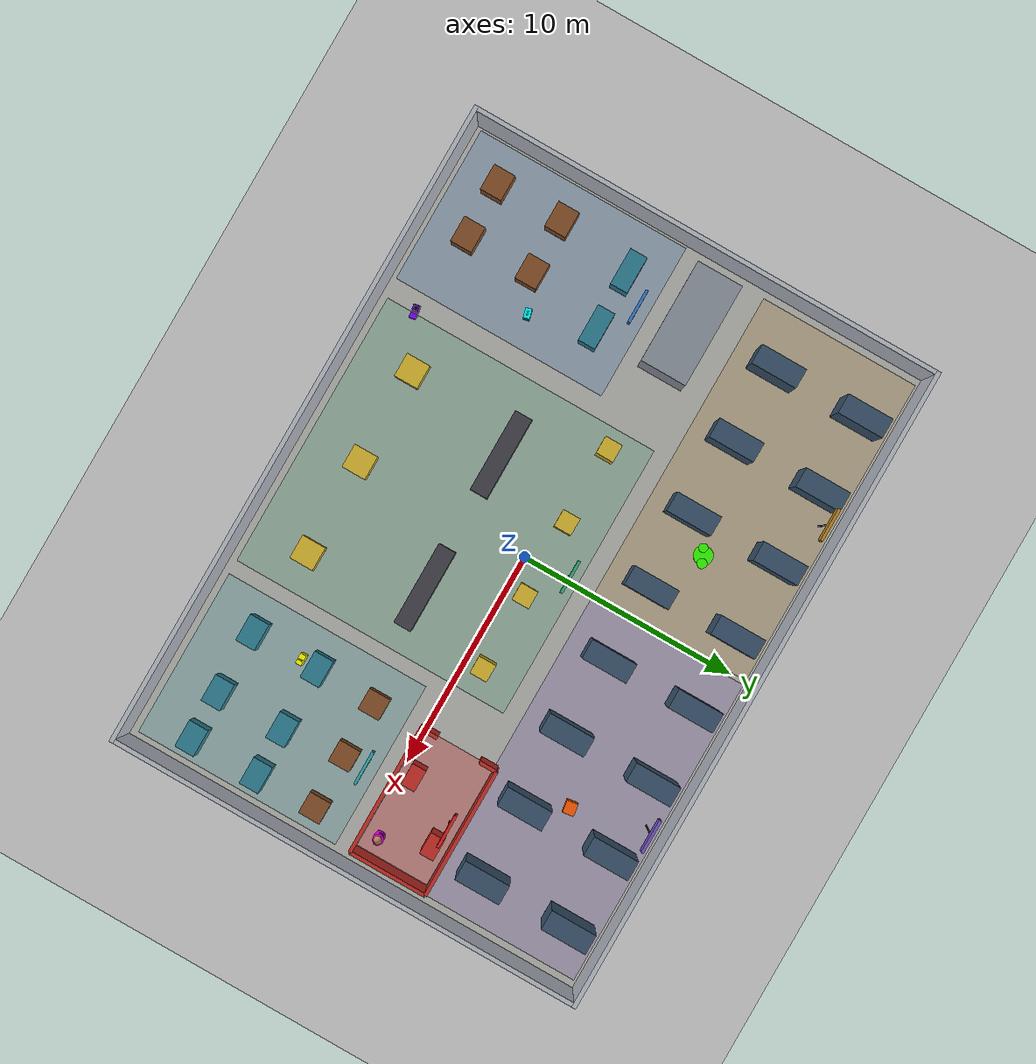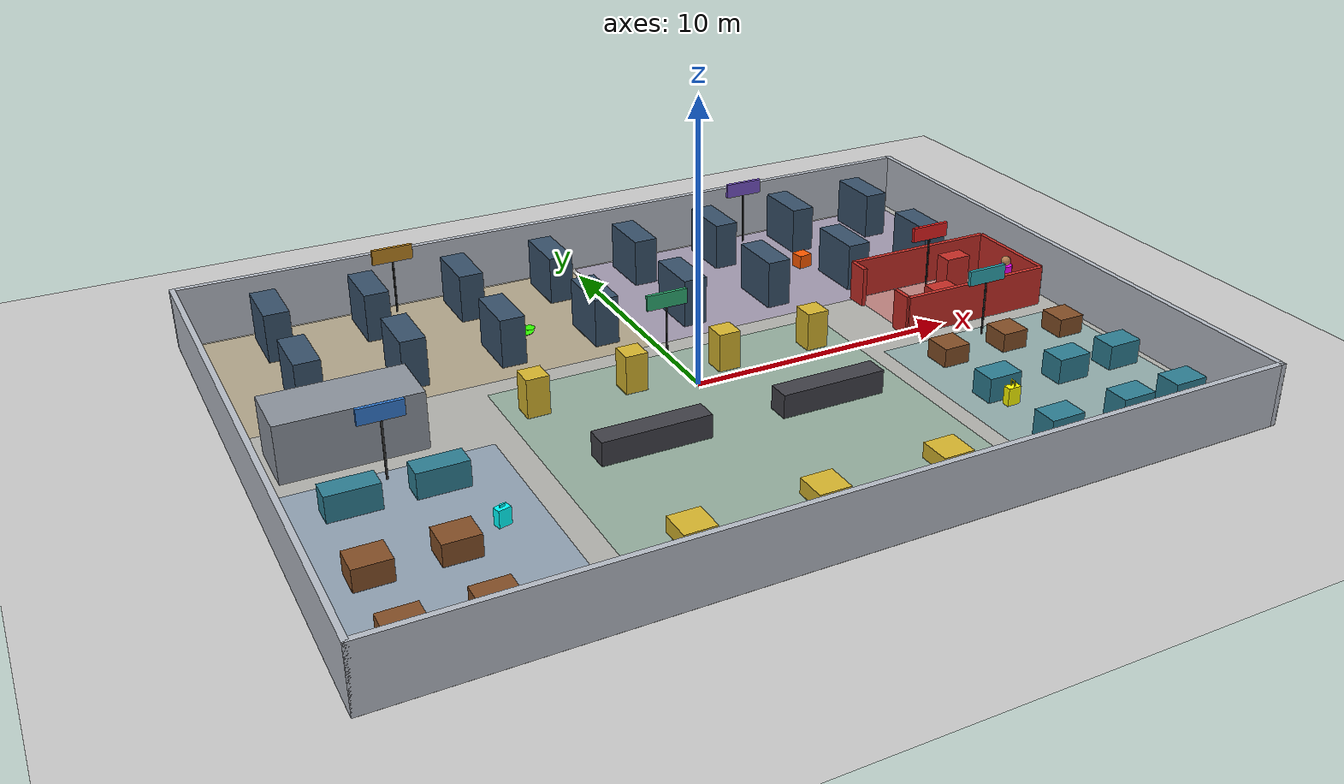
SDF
<?xml version='1.0'?>
<sdf version='1.6'>
  <world name='warehouse_security_world'>
    <include><uri>model://sun</uri></include>
    <include><uri>model://ground_plane</uri></include>

    <physics name='ode_physics' type='ode'>
      <real_time_update_rate>1000.0</real_time_update_rate>
      <max_step_size>0.001</max_step_size>
      <real_time_factor>1.0</real_time_factor>
    </physics>

    <scene>
      <ambient>0.55 0.55 0.58 1</ambient>
      <background>0.82 0.86 0.90 1</background>
      <shadows>true</shadows>
    </scene>

    <gui fullscreen='0'>
      <camera name='warehouse_camera'>
        <pose>0 -27 27 0 0.68 1.57</pose>
        <view_controller>orbit</view_controller>
      </camera>
    </gui>

    <model name='warehouse_floor'>
      <static>true</static>
      <pose>0 0 0.002 0 0 0</pose>
      <link name='link'>
        <visual name='visual'>
          <geometry><box><size>30 22 0.01</size></box></geometry>
          <material><diffuse>0.70 0.70 0.68 1</diffuse></material>
        </visual>
      </link>
    </model>

    <model name='Zone_A_Receiving_floor'>
      <static>true</static>
      <pose>-11.100 -5.600 0.008 0 0 0</pose>
      <link name='link'>
        <visual name='visual'>
          <geometry><box><size>7.200 10.000 0.012</size></box></geometry>
          <material>
            <ambient>0.2 0.48 0.82 0.24</ambient>
            <diffuse>0.2 0.48 0.82 0.24</diffuse>
          </material>
          <transparency>0.760</transparency>
        </visual>
      </link>
    </model>

    <model name='Zone_B_Central_Dispatch_floor'>
      <static>true</static>
      <pose>-0.200 -4.000 0.008 0 0 0</pose>
      <link name='link'>
        <visual name='visual'>
          <geometry><box><size>12.800 13.000 0.012</size></box></geometry>
          <material>
            <ambient>0.18 0.68 0.45 0.2</ambient>
            <diffuse>0.18 0.68 0.45 0.2</diffuse>
          </material>
          <transparency>0.800</transparency>
        </visual>
      </link>
    </model>

    <model name='Zone_C_West_Storage_floor'>
      <static>true</static>
      <pose>-7.300 7.000 0.008 0 0 0</pose>
      <link name='link'>
        <visual name='visual'>
          <geometry><box><size>14.400 7.400 0.012</size></box></geometry>
          <material>
            <ambient>0.74 0.52 0.12 0.22</ambient>
            <diffuse>0.74 0.52 0.12 0.22</diffuse>
          </material>
          <transparency>0.780</transparency>
        </visual>
      </link>
    </model>

    <model name='Zone_D_East_Storage_floor'>
      <static>true</static>
      <pose>7.300 7.000 0.008 0 0 0</pose>
      <link name='link'>
        <visual name='visual'>
          <geometry><box><size>14.400 7.400 0.012</size></box></geometry>
          <material>
            <ambient>0.46 0.32 0.78 0.22</ambient>
            <diffuse>0.46 0.32 0.78 0.22</diffuse>
          </material>
          <transparency>0.780</transparency>
        </visual>
      </link>
    </model>

    <model name='Zone_E_Restricted_Inventory_floor'>
      <static>true</static>
      <pose>11.250 1.600 0.008 0 0 0</pose>
      <link name='link'>
        <visual name='visual'>
          <geometry><box><size>5.700 3.400 0.012</size></box></geometry>
          <material>
            <ambient>0.9 0.12 0.12 0.3</ambient>
            <diffuse>0.9 0.12 0.12 0.3</diffuse>
          </material>
          <transparency>0.700</transparency>
        </visual>
      </link>
    </model>

    <model name='Zone_F_Packing_floor'>
      <static>true</static>
      <pose>10.700 -5.700 0.008 0 0 0</pose>
      <link name='link'>
        <visual name='visual'>
          <geometry><box><size>7.700 9.600 0.012</size></box></geometry>
          <material>
            <ambient>0.18 0.66 0.7 0.22</ambient>
            <diffuse>0.18 0.66 0.7 0.22</diffuse>
          </material>
          <transparency>0.780</transparency>
        </visual>
      </link>
    </model>

    <model name='wall_north'>
      <static>true</static>
      <pose>0.000 10.900 1.100 0 0 0</pose>
      <link name='link'>
        <collision name='collision'>
          <geometry><box><size>30.000 0.200 2.200</size></box></geometry>
        </collision>
        <visual name='visual'>
          <geometry><box><size>30.000 0.200 2.200</size></box></geometry>
          <material>
            <ambient>0.72 0.74 0.78 1.0</ambient>
            <diffuse>0.72 0.74 0.78 1.0</diffuse>
          </material>
        </visual>
      </link>
    </model>

    <model name='wall_south'>
      <static>true</static>
      <pose>0.000 -10.900 1.100 0 0 0</pose>
      <link name='link'>
        <collision name='collision'>
          <geometry><box><size>30.000 0.200 2.200</size></box></geometry>
        </collision>
        <visual name='visual'>
          <geometry><box><size>30.000 0.200 2.200</size></box></geometry>
          <material>
            <ambient>0.72 0.74 0.78 1.0</ambient>
            <diffuse>0.72 0.74 0.78 1.0</diffuse>
          </material>
        </visual>
      </link>
    </model>

    <model name='wall_west'>
      <static>true</static>
      <pose>-14.900 0.000 1.100 0 0 0</pose>
      <link name='link'>
        <collision name='collision'>
          <geometry><box><size>0.200 22.000 2.200</size></box></geometry>
        </collision>
        <visual name='visual'>
          <geometry><box><size>0.200 22.000 2.200</size></box></geometry>
          <material>
            <ambient>0.72 0.74 0.78 1.0</ambient>
            <diffuse>0.72 0.74 0.78 1.0</diffuse>
          </material>
        </visual>
      </link>
    </model>

    <model name='wall_east'>
      <static>true</static>
      <pose>14.900 0.000 1.100 0 0 0</pose>
      <link name='link'>
        <collision name='collision'>
          <geometry><box><size>0.200 22.000 2.200</size></box></geometry>
        </collision>
        <visual name='visual'>
          <geometry><box><size>0.200 22.000 2.200</size></box></geometry>
          <material>
            <ambient>0.72 0.74 0.78 1.0</ambient>
            <diffuse>0.72 0.74 0.78 1.0</diffuse>
          </material>
        </visual>
      </link>
    </model>

    <model name='rack_1_south'>
      <static>true</static>
      <pose>-12.000 5.150 0.900 0 0 0</pose>
      <link name='link'>
        <collision name='collision'>
          <geometry><box><size>0.900 2.100 1.800</size></box></geometry>
        </collision>
        <visual name='visual'>
          <geometry><box><size>0.900 2.100 1.800</size></box></geometry>
          <material>
            <ambient>0.22 0.32 0.42 1.0</ambient>
            <diffuse>0.22 0.32 0.42 1.0</diffuse>
          </material>
        </visual>
      </link>
    </model>

    <model name='rack_1_north'>
      <static>true</static>
      <pose>-12.000 9.250 0.900 0 0 0</pose>
      <link name='link'>
        <collision name='collision'>
          <geometry><box><size>0.900 2.100 1.800</size></box></geometry>
        </collision>
        <visual name='visual'>
          <geometry><box><size>0.900 2.100 1.800</size></box></geometry>
          <material>
            <ambient>0.22 0.32 0.42 1.0</ambient>
            <diffuse>0.22 0.32 0.42 1.0</diffuse>
          </material>
        </visual>
      </link>
    </model>

    <model name='rack_2_south'>
      <static>true</static>
      <pose>-8.500 5.150 0.900 0 0 0</pose>
      <link name='link'>
        <collision name='collision'>
          <geometry><box><size>0.900 2.100 1.800</size></box></geometry>
        </collision>
        <visual name='visual'>
          <geometry><box><size>0.900 2.100 1.800</size></box></geometry>
          <material>
            <ambient>0.22 0.32 0.42 1.0</ambient>
            <diffuse>0.22 0.32 0.42 1.0</diffuse>
          </material>
        </visual>
      </link>
    </model>

    <model name='rack_2_north'>
      <static>true</static>
      <pose>-8.500 9.250 0.900 0 0 0</pose>
      <link name='link'>
        <collision name='collision'>
          <geometry><box><size>0.900 2.100 1.800</size></box></geometry>
        </collision>
        <visual name='visual'>
          <geometry><box><size>0.900 2.100 1.800</size></box></geometry>
          <material>
            <ambient>0.22 0.32 0.42 1.0</ambient>
            <diffuse>0.22 0.32 0.42 1.0</diffuse>
          </material>
        </visual>
      </link>
    </model>

    <model name='rack_3_south'>
      <static>true</static>
      <pose>-5.000 5.150 0.900 0 0 0</pose>
      <link name='link'>
        <collision name='collision'>
          <geometry><box><size>0.900 2.100 1.800</size></box></geometry>
        </collision>
        <visual name='visual'>
          <geometry><box><size>0.900 2.100 1.800</size></box></geometry>
          <material>
            <ambient>0.22 0.32 0.42 1.0</ambient>
            <diffuse>0.22 0.32 0.42 1.0</diffuse>
          </material>
        </visual>
      </link>
    </model>

    <model name='rack_3_north'>
      <static>true</static>
      <pose>-5.000 9.250 0.900 0 0 0</pose>
      <link name='link'>
        <collision name='collision'>
          <geometry><box><size>0.900 2.100 1.800</size></box></geometry>
        </collision>
        <visual name='visual'>
          <geometry><box><size>0.900 2.100 1.800</size></box></geometry>
          <material>
            <ambient>0.22 0.32 0.42 1.0</ambient>
            <diffuse>0.22 0.32 0.42 1.0</diffuse>
          </material>
        </visual>
      </link>
    </model>

    <model name='rack_4_south'>
      <static>true</static>
      <pose>-1.500 5.150 0.900 0 0 0</pose>
      <link name='link'>
        <collision name='collision'>
          <geometry><box><size>0.900 2.100 1.800</size></box></geometry>
        </collision>
        <visual name='visual'>
          <geometry><box><size>0.900 2.100 1.800</size></box></geometry>
          <material>
            <ambient>0.22 0.32 0.42 1.0</ambient>
            <diffuse>0.22 0.32 0.42 1.0</diffuse>
          </material>
        </visual>
      </link>
    </model>

    <model name='rack_4_north'>
      <static>true</static>
      <pose>-1.500 9.250 0.900 0 0 0</pose>
      <link name='link'>
        <collision name='collision'>
          <geometry><box><size>0.900 2.100 1.800</size></box></geometry>
        </collision>
        <visual name='visual'>
          <geometry><box><size>0.900 2.100 1.800</size></box></geometry>
          <material>
            <ambient>0.22 0.32 0.42 1.0</ambient>
            <diffuse>0.22 0.32 0.42 1.0</diffuse>
          </material>
        </visual>
      </link>
    </model>

    <model name='rack_5_south'>
      <static>true</static>
      <pose>2.000 5.150 0.900 0 0 0</pose>
      <link name='link'>
        <collision name='collision'>
          <geometry><box><size>0.900 2.100 1.800</size></box></geometry>
        </collision>
        <visual name='visual'>
          <geometry><box><size>0.900 2.100 1.800</size></box></geometry>
          <material>
            <ambient>0.22 0.32 0.42 1.0</ambient>
            <diffuse>0.22 0.32 0.42 1.0</diffuse>
          </material>
        </visual>
      </link>
    </model>

    <model name='rack_5_north'>
      <static>true</static>
      <pose>2.000 9.250 0.900 0 0 0</pose>
      <link name='link'>
        <collision name='collision'>
          <geometry><box><size>0.900 2.100 1.800</size></box></geometry>
        </collision>
        <visual name='visual'>
          <geometry><box><size>0.900 2.100 1.800</size></box></geometry>
          <material>
            <ambient>0.22 0.32 0.42 1.0</ambient>
            <diffuse>0.22 0.32 0.42 1.0</diffuse>
          </material>
        </visual>
      </link>
    </model>

    <model name='rack_6_south'>
      <static>true</static>
      <pose>5.500 5.150 0.900 0 0 0</pose>
      <link name='link'>
        <collision name='collision'>
          <geometry><box><size>0.900 2.100 1.800</size></box></geometry>
        </collision>
        <visual name='visual'>
          <geometry><box><size>0.900 2.100 1.800</size></box></geometry>
          <material>
            <ambient>0.22 0.32 0.42 1.0</ambient>
            <diffuse>0.22 0.32 0.42 1.0</diffuse>
          </material>
        </visual>
      </link>
    </model>

    <model name='rack_6_north'>
      <static>true</static>
      <pose>5.500 9.250 0.900 0 0 0</pose>
      <link name='link'>
        <collision name='collision'>
          <geometry><box><size>0.900 2.100 1.800</size></box></geometry>
        </collision>
        <visual name='visual'>
          <geometry><box><size>0.900 2.100 1.800</size></box></geometry>
          <material>
            <ambient>0.22 0.32 0.42 1.0</ambient>
            <diffuse>0.22 0.32 0.42 1.0</diffuse>
          </material>
        </visual>
      </link>
    </model>

    <model name='rack_7_south'>
      <static>true</static>
      <pose>9.000 5.150 0.900 0 0 0</pose>
      <link name='link'>
        <collision name='collision'>
          <geometry><box><size>0.900 2.100 1.800</size></box></geometry>
        </collision>
        <visual name='visual'>
          <geometry><box><size>0.900 2.100 1.800</size></box></geometry>
          <material>
            <ambient>0.22 0.32 0.42 1.0</ambient>
            <diffuse>0.22 0.32 0.42 1.0</diffuse>
          </material>
        </visual>
      </link>
    </model>

    <model name='rack_7_north'>
      <static>true</static>
      <pose>9.000 9.250 0.900 0 0 0</pose>
      <link name='link'>
        <collision name='collision'>
          <geometry><box><size>0.900 2.100 1.800</size></box></geometry>
        </collision>
        <visual name='visual'>
          <geometry><box><size>0.900 2.100 1.800</size></box></geometry>
          <material>
            <ambient>0.22 0.32 0.42 1.0</ambient>
            <diffuse>0.22 0.32 0.42 1.0</diffuse>
          </material>
        </visual>
      </link>
    </model>

    <model name='rack_8_south'>
      <static>true</static>
      <pose>12.500 5.150 0.900 0 0 0</pose>
      <link name='link'>
        <collision name='collision'>
          <geometry><box><size>0.900 2.100 1.800</size></box></geometry>
        </collision>
        <visual name='visual'>
          <geometry><box><size>0.900 2.100 1.800</size></box></geometry>
          <material>
            <ambient>0.22 0.32 0.42 1.0</ambient>
            <diffuse>0.22 0.32 0.42 1.0</diffuse>
          </material>
        </visual>
      </link>
    </model>

    <model name='rack_8_north'>
      <static>true</static>
      <pose>12.500 9.250 0.900 0 0 0</pose>
      <link name='link'>
        <collision name='collision'>
          <geometry><box><size>0.900 2.100 1.800</size></box></geometry>
        </collision>
        <visual name='visual'>
          <geometry><box><size>0.900 2.100 1.800</size></box></geometry>
          <material>
            <ambient>0.22 0.32 0.42 1.0</ambient>
            <diffuse>0.22 0.32 0.42 1.0</diffuse>
          </material>
        </visual>
      </link>
    </model>

    <model name='receiving_pallet_1'>
      <static>true</static>
      <pose>-13.000 -8.800 0.375 0 0 0</pose>
      <link name='link'>
        <collision name='collision'>
          <geometry><box><size>1.200 1.000 0.750</size></box></geometry>
        </collision>
        <visual name='visual'>
          <geometry><box><size>1.200 1.000 0.750</size></box></geometry>
          <material>
            <ambient>0.52 0.31 0.15 1.0</ambient>
            <diffuse>0.52 0.31 0.15 1.0</diffuse>
          </material>
        </visual>
      </link>
    </model>

    <model name='receiving_pallet_2'>
      <static>true</static>
      <pose>-10.500 -8.800 0.375 0 0 0</pose>
      <link name='link'>
        <collision name='collision'>
          <geometry><box><size>1.200 1.000 0.750</size></box></geometry>
        </collision>
        <visual name='visual'>
          <geometry><box><size>1.200 1.000 0.750</size></box></geometry>
          <material>
            <ambient>0.52 0.31 0.15 1.0</ambient>
            <diffuse>0.52 0.31 0.15 1.0</diffuse>
          </material>
        </visual>
      </link>
    </model>

    <model name='receiving_pallet_3'>
      <static>true</static>
      <pose>-13.000 -5.700 0.375 0 0 0</pose>
      <link name='link'>
        <collision name='collision'>
          <geometry><box><size>1.200 1.000 0.750</size></box></geometry>
        </collision>
        <visual name='visual'>
          <geometry><box><size>1.200 1.000 0.750</size></box></geometry>
          <material>
            <ambient>0.52 0.31 0.15 1.0</ambient>
            <diffuse>0.52 0.31 0.15 1.0</diffuse>
          </material>
        </visual>
      </link>
    </model>

    <model name='receiving_pallet_4'>
      <static>true</static>
      <pose>-10.500 -5.700 0.375 0 0 0</pose>
      <link name='link'>
        <collision name='collision'>
          <geometry><box><size>1.200 1.000 0.750</size></box></geometry>
        </collision>
        <visual name='visual'>
          <geometry><box><size>1.200 1.000 0.750</size></box></geometry>
          <material>
            <ambient>0.52 0.31 0.15 1.0</ambient>
            <diffuse>0.52 0.31 0.15 1.0</diffuse>
          </material>
        </visual>
      </link>
    </model>

    <model name='inspection_table_1'>
      <static>true</static>
      <pose>-12.500 -2.200 0.450 0 0 0</pose>
      <link name='link'>
        <collision name='collision'>
          <geometry><box><size>1.700 0.800 0.900</size></box></geometry>
        </collision>
        <visual name='visual'>
          <geometry><box><size>1.700 0.800 0.900</size></box></geometry>
          <material>
            <ambient>0.18 0.5 0.58 1.0</ambient>
            <diffuse>0.18 0.5 0.58 1.0</diffuse>
          </material>
        </visual>
      </link>
    </model>

    <model name='inspection_table_2'>
      <static>true</static>
      <pose>-9.800 -2.200 0.450 0 0 0</pose>
      <link name='link'>
        <collision name='collision'>
          <geometry><box><size>1.700 0.800 0.900</size></box></geometry>
        </collision>
        <visual name='visual'>
          <geometry><box><size>1.700 0.800 0.900</size></box></geometry>
          <material>
            <ambient>0.18 0.5 0.58 1.0</ambient>
            <diffuse>0.18 0.5 0.58 1.0</diffuse>
          </material>
        </visual>
      </link>
    </model>

    <model name='west_admin_block'>
      <static>true</static>
      <pose>-11.700 1.150 1.000 0 0 0</pose>
      <link name='link'>
        <collision name='collision'>
          <geometry><box><size>4.700 2.100 2.000</size></box></geometry>
        </collision>
        <visual name='visual'>
          <geometry><box><size>4.700 2.100 2.000</size></box></geometry>
          <material>
            <ambient>0.55 0.58 0.62 1.0</ambient>
            <diffuse>0.55 0.58 0.62 1.0</diffuse>
          </material>
        </visual>
      </link>
    </model>

    <model name='conveyor_west'>
      <static>true</static>
      <pose>-3.200 -3.000 0.425 0 0 0</pose>
      <link name='link'>
        <collision name='collision'>
          <geometry><box><size>3.800 0.800 0.850</size></box></geometry>
        </collision>
        <visual name='visual'>
          <geometry><box><size>3.800 0.800 0.850</size></box></geometry>
          <material>
            <ambient>0.25 0.25 0.28 1.0</ambient>
            <diffuse>0.25 0.25 0.28 1.0</diffuse>
          </material>
        </visual>
      </link>
    </model>

    <model name='conveyor_east'>
      <static>true</static>
      <pose>3.200 -3.000 0.425 0 0 0</pose>
      <link name='link'>
        <collision name='collision'>
          <geometry><box><size>3.800 0.800 0.850</size></box></geometry>
        </collision>
        <visual name='visual'>
          <geometry><box><size>3.800 0.800 0.850</size></box></geometry>
          <material>
            <ambient>0.25 0.25 0.28 1.0</ambient>
            <diffuse>0.25 0.25 0.28 1.0</diffuse>
          </material>
        </visual>
      </link>
    </model>

    <model name='charging_island_1'>
      <static>true</static>
      <pose>-4.400 -8.000 0.275 0 0 0</pose>
      <link name='link'>
        <collision name='collision'>
          <geometry><box><size>1.100 1.100 0.550</size></box></geometry>
        </collision>
        <visual name='visual'>
          <geometry><box><size>1.100 1.100 0.550</size></box></geometry>
          <material>
            <ambient>0.85 0.72 0.18 1.0</ambient>
            <diffuse>0.85 0.72 0.18 1.0</diffuse>
          </material>
        </visual>
      </link>
    </model>

    <model name='charging_island_2'>
      <static>true</static>
      <pose>0.000 -8.000 0.275 0 0 0</pose>
      <link name='link'>
        <collision name='collision'>
          <geometry><box><size>1.100 1.100 0.550</size></box></geometry>
        </collision>
        <visual name='visual'>
          <geometry><box><size>1.100 1.100 0.550</size></box></geometry>
          <material>
            <ambient>0.85 0.72 0.18 1.0</ambient>
            <diffuse>0.85 0.72 0.18 1.0</diffuse>
          </material>
        </visual>
      </link>
    </model>

    <model name='charging_island_3'>
      <static>true</static>
      <pose>4.400 -8.000 0.275 0 0 0</pose>
      <link name='link'>
        <collision name='collision'>
          <geometry><box><size>1.100 1.100 0.550</size></box></geometry>
        </collision>
        <visual name='visual'>
          <geometry><box><size>1.100 1.100 0.550</size></box></geometry>
          <material>
            <ambient>0.85 0.72 0.18 1.0</ambient>
            <diffuse>0.85 0.72 0.18 1.0</diffuse>
          </material>
        </visual>
      </link>
    </model>

    <model name='sorter_column_1'>
      <static>true</static>
      <pose>-5.600 0.800 0.700 0 0 0</pose>
      <link name='link'>
        <collision name='collision'>
          <geometry><box><size>0.800 0.800 1.400</size></box></geometry>
        </collision>
        <visual name='visual'>
          <geometry><box><size>0.800 0.800 1.400</size></box></geometry>
          <material>
            <ambient>0.85 0.72 0.18 1.0</ambient>
            <diffuse>0.85 0.72 0.18 1.0</diffuse>
          </material>
        </visual>
      </link>
    </model>

    <model name='sorter_column_2'>
      <static>true</static>
      <pose>-2.100 0.800 0.700 0 0 0</pose>
      <link name='link'>
        <collision name='collision'>
          <geometry><box><size>0.800 0.800 1.400</size></box></geometry>
        </collision>
        <visual name='visual'>
          <geometry><box><size>0.800 0.800 1.400</size></box></geometry>
          <material>
            <ambient>0.85 0.72 0.18 1.0</ambient>
            <diffuse>0.85 0.72 0.18 1.0</diffuse>
          </material>
        </visual>
      </link>
    </model>

    <model name='sorter_column_3'>
      <static>true</static>
      <pose>1.400 0.800 0.700 0 0 0</pose>
      <link name='link'>
        <collision name='collision'>
          <geometry><box><size>0.800 0.800 1.400</size></box></geometry>
        </collision>
        <visual name='visual'>
          <geometry><box><size>0.800 0.800 1.400</size></box></geometry>
          <material>
            <ambient>0.85 0.72 0.18 1.0</ambient>
            <diffuse>0.85 0.72 0.18 1.0</diffuse>
          </material>
        </visual>
      </link>
    </model>

    <model name='sorter_column_4'>
      <static>true</static>
      <pose>4.900 0.800 0.700 0 0 0</pose>
      <link name='link'>
        <collision name='collision'>
          <geometry><box><size>0.800 0.800 1.400</size></box></geometry>
        </collision>
        <visual name='visual'>
          <geometry><box><size>0.800 0.800 1.400</size></box></geometry>
          <material>
            <ambient>0.85 0.72 0.18 1.0</ambient>
            <diffuse>0.85 0.72 0.18 1.0</diffuse>
          </material>
        </visual>
      </link>
    </model>

    <model name='packing_table_1'>
      <static>true</static>
      <pose>8.400 -8.300 0.450 0 0 0</pose>
      <link name='link'>
        <collision name='collision'>
          <geometry><box><size>1.250 0.900 0.900</size></box></geometry>
        </collision>
        <visual name='visual'>
          <geometry><box><size>1.250 0.900 0.900</size></box></geometry>
          <material>
            <ambient>0.18 0.5 0.58 1.0</ambient>
            <diffuse>0.18 0.5 0.58 1.0</diffuse>
          </material>
        </visual>
      </link>
    </model>

    <model name='packing_table_2'>
      <static>true</static>
      <pose>11.300 -8.300 0.450 0 0 0</pose>
      <link name='link'>
        <collision name='collision'>
          <geometry><box><size>1.250 0.900 0.900</size></box></geometry>
        </collision>
        <visual name='visual'>
          <geometry><box><size>1.250 0.900 0.900</size></box></geometry>
          <material>
            <ambient>0.18 0.5 0.58 1.0</ambient>
            <diffuse>0.18 0.5 0.58 1.0</diffuse>
          </material>
        </visual>
      </link>
    </model>

    <model name='packing_table_3'>
      <static>true</static>
      <pose>13.500 -8.300 0.450 0 0 0</pose>
      <link name='link'>
        <collision name='collision'>
          <geometry><box><size>1.250 0.900 0.900</size></box></geometry>
        </collision>
        <visual name='visual'>
          <geometry><box><size>1.250 0.900 0.900</size></box></geometry>
          <material>
            <ambient>0.18 0.5 0.58 1.0</ambient>
            <diffuse>0.18 0.5 0.58 1.0</diffuse>
          </material>
        </visual>
      </link>
    </model>

    <model name='packing_table_4'>
      <static>true</static>
      <pose>8.400 -5.200 0.450 0 0 0</pose>
      <link name='link'>
        <collision name='collision'>
          <geometry><box><size>1.250 0.900 0.900</size></box></geometry>
        </collision>
        <visual name='visual'>
          <geometry><box><size>1.250 0.900 0.900</size></box></geometry>
          <material>
            <ambient>0.18 0.5 0.58 1.0</ambient>
            <diffuse>0.18 0.5 0.58 1.0</diffuse>
          </material>
        </visual>
      </link>
    </model>

    <model name='packing_table_5'>
      <static>true</static>
      <pose>11.300 -5.200 0.450 0 0 0</pose>
      <link name='link'>
        <collision name='collision'>
          <geometry><box><size>1.250 0.900 0.900</size></box></geometry>
        </collision>
        <visual name='visual'>
          <geometry><box><size>1.250 0.900 0.900</size></box></geometry>
          <material>
            <ambient>0.18 0.5 0.58 1.0</ambient>
            <diffuse>0.18 0.5 0.58 1.0</diffuse>
          </material>
        </visual>
      </link>
    </model>

    <model name='packing_table_6'>
      <static>true</static>
      <pose>13.500 -5.200 0.450 0 0 0</pose>
      <link name='link'>
        <collision name='collision'>
          <geometry><box><size>1.250 0.900 0.900</size></box></geometry>
        </collision>
        <visual name='visual'>
          <geometry><box><size>1.250 0.900 0.900</size></box></geometry>
          <material>
            <ambient>0.18 0.5 0.58 1.0</ambient>
            <diffuse>0.18 0.5 0.58 1.0</diffuse>
          </material>
        </visual>
      </link>
    </model>

    <model name='outbound_pallet_1'>
      <static>true</static>
      <pose>8.500 -2.400 0.350 0 0 0</pose>
      <link name='link'>
        <collision name='collision'>
          <geometry><box><size>1.000 1.000 0.700</size></box></geometry>
        </collision>
        <visual name='visual'>
          <geometry><box><size>1.000 1.000 0.700</size></box></geometry>
          <material>
            <ambient>0.52 0.31 0.15 1.0</ambient>
            <diffuse>0.52 0.31 0.15 1.0</diffuse>
          </material>
        </visual>
      </link>
    </model>

    <model name='outbound_pallet_2'>
      <static>true</static>
      <pose>11.000 -2.400 0.350 0 0 0</pose>
      <link name='link'>
        <collision name='collision'>
          <geometry><box><size>1.000 1.000 0.700</size></box></geometry>
        </collision>
        <visual name='visual'>
          <geometry><box><size>1.000 1.000 0.700</size></box></geometry>
          <material>
            <ambient>0.52 0.31 0.15 1.0</ambient>
            <diffuse>0.52 0.31 0.15 1.0</diffuse>
          </material>
        </visual>
      </link>
    </model>

    <model name='outbound_pallet_3'>
      <static>true</static>
      <pose>13.500 -2.400 0.350 0 0 0</pose>
      <link name='link'>
        <collision name='collision'>
          <geometry><box><size>1.000 1.000 0.700</size></box></geometry>
        </collision>
        <visual name='visual'>
          <geometry><box><size>1.000 1.000 0.700</size></box></geometry>
          <material>
            <ambient>0.52 0.31 0.15 1.0</ambient>
            <diffuse>0.52 0.31 0.15 1.0</diffuse>
          </material>
        </visual>
      </link>
    </model>

    <model name='cage_north'>
      <static>true</static>
      <pose>11.250 3.400 0.750 0 0 0</pose>
      <link name='link'>
        <collision name='collision'>
          <geometry><box><size>5.900 0.160 1.500</size></box></geometry>
        </collision>
        <visual name='visual'>
          <geometry><box><size>5.900 0.160 1.500</size></box></geometry>
          <material>
            <ambient>0.78 0.18 0.15 1.0</ambient>
            <diffuse>0.78 0.18 0.15 1.0</diffuse>
          </material>
        </visual>
      </link>
    </model>

    <model name='cage_south'>
      <static>true</static>
      <pose>11.250 -0.200 0.750 0 0 0</pose>
      <link name='link'>
        <collision name='collision'>
          <geometry><box><size>5.900 0.160 1.500</size></box></geometry>
        </collision>
        <visual name='visual'>
          <geometry><box><size>5.900 0.160 1.500</size></box></geometry>
          <material>
            <ambient>0.78 0.18 0.15 1.0</ambient>
            <diffuse>0.78 0.18 0.15 1.0</diffuse>
          </material>
        </visual>
      </link>
    </model>

    <model name='cage_east'>
      <static>true</static>
      <pose>14.200 1.600 0.750 0 0 0</pose>
      <link name='link'>
        <collision name='collision'>
          <geometry><box><size>0.160 3.600 1.500</size></box></geometry>
        </collision>
        <visual name='visual'>
          <geometry><box><size>0.160 3.600 1.500</size></box></geometry>
          <material>
            <ambient>0.78 0.18 0.15 1.0</ambient>
            <diffuse>0.78 0.18 0.15 1.0</diffuse>
          </material>
        </visual>
      </link>
    </model>

    <model name='cage_west_lower'>
      <static>true</static>
      <pose>8.300 0.200 0.750 0 0 0</pose>
      <link name='link'>
        <collision name='collision'>
          <geometry><box><size>0.160 0.800 1.500</size></box></geometry>
        </collision>
        <visual name='visual'>
          <geometry><box><size>0.160 0.800 1.500</size></box></geometry>
          <material>
            <ambient>0.78 0.18 0.15 1.0</ambient>
            <diffuse>0.78 0.18 0.15 1.0</diffuse>
          </material>
        </visual>
      </link>
    </model>

    <model name='cage_west_upper'>
      <static>true</static>
      <pose>8.300 3.000 0.750 0 0 0</pose>
      <link name='link'>
        <collision name='collision'>
          <geometry><box><size>0.160 0.800 1.500</size></box></geometry>
        </collision>
        <visual name='visual'>
          <geometry><box><size>0.160 0.800 1.500</size></box></geometry>
          <material>
            <ambient>0.78 0.18 0.15 1.0</ambient>
            <diffuse>0.78 0.18 0.15 1.0</diffuse>
          </material>
        </visual>
      </link>
    </model>

    <model name='secure_cabinet_1'>
      <static>true</static>
      <pose>10.250 0.550 0.625 0 0 0</pose>
      <link name='link'>
        <collision name='collision'>
          <geometry><box><size>1.000 0.650 1.250</size></box></geometry>
        </collision>
        <visual name='visual'>
          <geometry><box><size>1.000 0.650 1.250</size></box></geometry>
          <material>
            <ambient>0.78 0.18 0.15 1.0</ambient>
            <diffuse>0.78 0.18 0.15 1.0</diffuse>
          </material>
        </visual>
      </link>
    </model>

    <model name='secure_cabinet_2'>
      <static>true</static>
      <pose>12.350 2.650 0.625 0 0 0</pose>
      <link name='link'>
        <collision name='collision'>
          <geometry><box><size>1.000 0.650 1.250</size></box></geometry>
        </collision>
        <visual name='visual'>
          <geometry><box><size>1.000 0.650 1.250</size></box></geometry>
          <material>
            <ambient>0.78 0.18 0.15 1.0</ambient>
            <diffuse>0.78 0.18 0.15 1.0</diffuse>
          </material>
        </visual>
      </link>
    </model>

    <model name='Zone_A_Receiving_sign'>
      <static>true</static>
      <pose>-11.100 -1.100 2.35 0 0 0</pose>
      <link name='link'>
        <visual name='post'>
          <pose>0 0 -1.15 0 0 0</pose>
          <geometry><cylinder><radius>0.035</radius><length>2.3</length></cylinder></geometry>
          <material><diffuse>0.2 0.2 0.2 1</diffuse></material>
        </visual>
        <visual name='panel'>
          <geometry><box><size>1.5 0.12 0.55</size></box></geometry>
          <material><diffuse>0.2 0.48 0.82 1</diffuse></material>
        </visual>
      </link>
    </model>

    <model name='Zone_B_Central_Dispatch_sign'>
      <static>true</static>
      <pose>-0.200 2.000 2.35 0 0 0</pose>
      <link name='link'>
        <visual name='post'>
          <pose>0 0 -1.15 0 0 0</pose>
          <geometry><cylinder><radius>0.035</radius><length>2.3</length></cylinder></geometry>
          <material><diffuse>0.2 0.2 0.2 1</diffuse></material>
        </visual>
        <visual name='panel'>
          <geometry><box><size>1.5 0.12 0.55</size></box></geometry>
          <material><diffuse>0.18 0.68 0.45 1</diffuse></material>
        </visual>
      </link>
    </model>

    <model name='Zone_C_West_Storage_sign'>
      <static>true</static>
      <pose>-7.300 10.100 2.35 0 0 0</pose>
      <link name='link'>
        <visual name='post'>
          <pose>0 0 -1.15 0 0 0</pose>
          <geometry><cylinder><radius>0.035</radius><length>2.3</length></cylinder></geometry>
          <material><diffuse>0.2 0.2 0.2 1</diffuse></material>
        </visual>
        <visual name='panel'>
          <geometry><box><size>1.5 0.12 0.55</size></box></geometry>
          <material><diffuse>0.74 0.52 0.12 1</diffuse></material>
        </visual>
      </link>
    </model>

    <model name='Zone_D_East_Storage_sign'>
      <static>true</static>
      <pose>7.300 10.100 2.35 0 0 0</pose>
      <link name='link'>
        <visual name='post'>
          <pose>0 0 -1.15 0 0 0</pose>
          <geometry><cylinder><radius>0.035</radius><length>2.3</length></cylinder></geometry>
          <material><diffuse>0.2 0.2 0.2 1</diffuse></material>
        </visual>
        <visual name='panel'>
          <geometry><box><size>1.5 0.12 0.55</size></box></geometry>
          <material><diffuse>0.46 0.32 0.78 1</diffuse></material>
        </visual>
      </link>
    </model>

    <model name='Zone_E_Restricted_Inventory_sign'>
      <static>true</static>
      <pose>11.250 2.800 2.35 0 0 0</pose>
      <link name='link'>
        <visual name='post'>
          <pose>0 0 -1.15 0 0 0</pose>
          <geometry><cylinder><radius>0.035</radius><length>2.3</length></cylinder></geometry>
          <material><diffuse>0.2 0.2 0.2 1</diffuse></material>
        </visual>
        <visual name='panel'>
          <geometry><box><size>1.5 0.12 0.55</size></box></geometry>
          <material><diffuse>0.9 0.12 0.12 1</diffuse></material>
        </visual>
      </link>
    </model>

    <model name='Zone_F_Packing_sign'>
      <static>true</static>
      <pose>10.700 -1.400 2.35 0 0 0</pose>
      <link name='link'>
        <visual name='post'>
          <pose>0 0 -1.15 0 0 0</pose>
          <geometry><cylinder><radius>0.035</radius><length>2.3</length></cylinder></geometry>
          <material><diffuse>0.2 0.2 0.2 1</diffuse></material>
        </visual>
        <visual name='panel'>
          <geometry><box><size>1.5 0.12 0.55</size></box></geometry>
          <material><diffuse>0.18 0.66 0.7 1</diffuse></material>
        </visual>
      </link>
    </model>

    <model name='restricted_zone_intruder'>
      <static>true</static>
      <pose>13.15 0.55 0 0 0 3.14159</pose>
      <link name='body'>
        <collision name='full_body_collision'>
          <pose>0 0 0.78 0 0 0</pose>
          <geometry><cylinder><radius>0.22</radius><length>1.50</length></cylinder></geometry>
        </collision>
        <visual name='torso_visual'>
          <pose>0 0 1.12 0 0 0</pose>
          <geometry><cylinder><radius>0.22</radius><length>0.72</length></cylinder></geometry>
          <material><diffuse>0.85 0.12 0.10 1</diffuse></material>
        </visual>
        <visual name='head_visual'>
          <pose>0 0 1.65 0 0 0</pose>
          <geometry><sphere><radius>0.18</radius></sphere></geometry>
          <material><diffuse>0.72 0.50 0.32 1</diffuse></material>
        </visual>
        <visual name='leg_left'>
          <pose>0 0.11 0.48 0 0 0</pose>
          <geometry><cylinder><radius>0.075</radius><length>0.85</length></cylinder></geometry>
          <material><diffuse>0.10 0.12 0.18 1</diffuse></material>
        </visual>
        <visual name='leg_right'>
          <pose>0 -0.11 0.48 0 0 0</pose>
          <geometry><cylinder><radius>0.075</radius><length>0.85</length></cylinder></geometry>
          <material><diffuse>0.10 0.12 0.18 1</diffuse></material>
        </visual>
      </link>
    </model>

    <!-- PERSON 2 CAMERA-DETECTION PROPS.
         The high-saturation emissive colours are intentionally unique so the
         simulator detector can identify them reliably from /camera/image_raw. -->

    <!-- Magenta overlay on the existing restricted-zone mannequin. -->
    <model name='sim_anomaly_person_marker'>
      <static>true</static>
      <pose>13.15 0.55 0 0 0 3.14159</pose>
      <link name='marker'>
        <visual name='torso_marker'>
          <pose>0 0 1.12 0 0 0</pose>
          <geometry><cylinder><radius>0.235</radius><length>0.74</length></cylinder></geometry>
          <material>
            <ambient>1 0 1 1</ambient><diffuse>1 0 1 1</diffuse><emissive>0.55 0 0.55 1</emissive>
          </material>
        </visual>
        <visual name='shoulder_marker'>
          <pose>0 0 1.38 0 0 0</pose>
          <geometry><box><size>0.52 0.18 0.16</size></box></geometry>
          <material>
            <ambient>1 0 1 1</ambient><diffuse>1 0 1 1</diffuse><emissive>0.55 0 0.55 1</emissive>
          </material>
        </visual>
      </link>
    </model>

    <!-- Cyan unattended backpack beside the Zone A patrol lane. -->
    <model name='sim_anomaly_backpack'>
      <static>true</static>
      <pose>-8.90 -5.00 0 0 0 0.25</pose>
      <link name='backpack'>
        <collision name='collision'>
          <pose>0 0 0.34 0 0 0</pose>
          <geometry><box><size>0.44 0.28 0.58</size></box></geometry>
        </collision>
        <visual name='body'>
          <pose>0 0 0.34 0 0 0</pose>
          <geometry><box><size>0.44 0.28 0.58</size></box></geometry>
          <material>
            <ambient>0 1 1 1</ambient><diffuse>0 1 1 1</diffuse><emissive>0 0.45 0.45 1</emissive>
          </material>
        </visual>
        <visual name='pocket'>
          <pose>0.18 0 0.24 0 0 0</pose>
          <geometry><box><size>0.10 0.24 0.25</size></box></geometry>
          <material><ambient>0 0.45 0.55 1</ambient><diffuse>0 0.45 0.55 1</diffuse></material>
        </visual>
        <visual name='handle'>
          <pose>0 0 0.69 0 0 0</pose>
          <geometry><box><size>0.18 0.06 0.08</size></box></geometry>
          <material><ambient>0 1 1 1</ambient><diffuse>0 1 1 1</diffuse><emissive>0 0.45 0.45 1</emissive></material>
        </visual>
      </link>
    </model>

    <!-- Yellow unattended suitcase beside the Zone F patrol lane. -->
    <model name='sim_anomaly_suitcase'>
      <static>true</static>
      <pose>8.40 -6.00 0 0 0 0</pose>
      <link name='suitcase'>
        <collision name='collision'>
          <pose>0 0 0.36 0 0 0</pose>
          <geometry><box><size>0.48 0.27 0.64</size></box></geometry>
        </collision>
        <visual name='body'>
          <pose>0 0 0.36 0 0 0</pose>
          <geometry><box><size>0.48 0.27 0.64</size></box></geometry>
          <material>
            <ambient>1 1 0 1</ambient><diffuse>1 1 0 1</diffuse><emissive>0.45 0.45 0 1</emissive>
          </material>
        </visual>
        <visual name='handle_left'>
          <pose>0 0.08 0.76 0 0 0</pose>
          <geometry><cylinder><radius>0.025</radius><length>0.22</length></cylinder></geometry>
          <material><ambient>1 1 0 1</ambient><diffuse>1 1 0 1</diffuse><emissive>0.45 0.45 0 1</emissive></material>
        </visual>
        <visual name='handle_right'>
          <pose>0 -0.08 0.76 0 0 0</pose>
          <geometry><cylinder><radius>0.025</radius><length>0.22</length></cylinder></geometry>
          <material><ambient>1 1 0 1</ambient><diffuse>1 1 0 1</diffuse><emissive>0.45 0.45 0 1</emissive></material>
        </visual>
        <visual name='handle_top'>
          <pose>0 0 0.87 1.5708 0 0</pose>
          <geometry><cylinder><radius>0.025</radius><length>0.18</length></cylinder></geometry>
          <material><ambient>1 1 0 1</ambient><diffuse>1 1 0 1</diffuse><emissive>0.45 0.45 0 1</emissive></material>
        </visual>
      </link>
    </model>

    <!-- Orange crate representing an aisle obstruction in Zone D. -->
    <model name='sim_anomaly_aisle_obstruction'>
      <static>true</static>
      <pose>8.20 6.90 0 0 0 0.15</pose>
      <link name='crate'>
        <collision name='collision'>
          <pose>0 0 0.28 0 0 0</pose>
          <geometry><box><size>0.55 0.50 0.52</size></box></geometry>
        </collision>
        <visual name='body'>
          <pose>0 0 0.28 0 0 0</pose>
          <geometry><box><size>0.55 0.50 0.52</size></box></geometry>
          <material>
            <ambient>1 0.35 0 1</ambient><diffuse>1 0.35 0 1</diffuse><emissive>0.45 0.12 0 1</emissive>
          </material>
        </visual>
        <visual name='stripe'>
          <pose>0.281 0 0.28 0 0 0</pose>
          <geometry><box><size>0.012 0.42 0.10</size></box></geometry>
          <material><ambient>1 0.7 0 1</ambient><diffuse>1 0.7 0 1</diffuse><emissive>0.4 0.2 0 1</emissive></material>
        </visual>
      </link>
    </model>

    <!-- Lime visual-only hazardous spill in Zone C; no collision, so patrol is safe. -->
    <model name='sim_anomaly_hazardous_spill'>
      <static>true</static>
      <pose>-3.80 6.50 0.018 0 0 0</pose>
      <link name='spill'>
        <visual name='pool_main'>
          <geometry><cylinder><radius>0.43</radius><length>0.025</length></cylinder></geometry>
          <material>
            <ambient>0.2 1 0 1</ambient><diffuse>0.2 1 0 1</diffuse><emissive>0.08 0.45 0 1</emissive>
          </material>
        </visual>
        <visual name='pool_side_1'>
          <pose>0.32 0.12 0 0 0 0</pose>
          <geometry><cylinder><radius>0.22</radius><length>0.026</length></cylinder></geometry>
          <material><ambient>0.2 1 0 1</ambient><diffuse>0.2 1 0 1</diffuse><emissive>0.08 0.45 0 1</emissive></material>
        </visual>
        <visual name='pool_side_2'>
          <pose>-0.28 -0.16 0 0 0 0</pose>
          <geometry><cylinder><radius>0.20</radius><length>0.026</length></cylinder></geometry>
          <material><ambient>0.2 1 0 1</ambient><diffuse>0.2 1 0 1</diffuse><emissive>0.08 0.45 0 1</emissive></material>
        </visual>
      </link>
    </model>

    <model name='sim_anomaly_shoe'>
      <static>true</static>
      <pose>-6.65 -9.20 0 0 0 0.15</pose>
      <link name='shoe'>
        <collision name='collision'>
          <pose>0 0 0.14 0 0 0</pose>
          <geometry><box><size>0.52 0.30 0.28</size></box></geometry>
        </collision>
        <visual name='sole'>
          <pose>0 0 0.045 0 0 0</pose>
          <geometry><box><size>0.58 0.32 0.09</size></box></geometry>
          <material>
            <ambient>0.02 0.05 0.15 1</ambient>
            <diffuse>0.02 0.05 0.15 1</diffuse>
          </material>
        </visual>
        <visual name='toe'>
          <pose>0.13 0 0.13 0 0 0</pose>
          <geometry><box><size>0.36 0.29 0.17</size></box></geometry>
          <material>
            <ambient>0.50 0 1 1</ambient>
            <diffuse>0.50 0 1 1</diffuse>
            <emissive>0.18 0 0.45 1</emissive>
          </material>
        </visual>
        <visual name='heel_upper'>
          <pose>-0.16 0 0.19 0 0 0</pose>
          <geometry><box><size>0.24 0.27 0.28</size></box></geometry>
          <material>
            <ambient>0.50 0 1 1</ambient>
            <diffuse>0.50 0 1 1</diffuse>
            <emissive>0.18 0 0.45 1</emissive>
          </material>
        </visual>
        <visual name='opening'>
          <pose>-0.16 0 0.335 0 0 0</pose>
          <geometry><box><size>0.15 0.17 0.025</size></box></geometry>
          <material>
            <ambient>0.01 0.01 0.02 1</ambient>
            <diffuse>0.01 0.01 0.02 1</diffuse>
          </material>
        </visual>
        <visual name='lace_1'>
          <pose>-0.015 0 0.235 0 0 0</pose>
          <geometry><box><size>0.035 0.30 0.018</size></box></geometry>
          <material><ambient>1 1 1 1</ambient><diffuse>1 1 1 1</diffuse></material>
        </visual>
        <visual name='lace_2'>
          <pose>0.055 0 0.215 0 0 0</pose>
          <geometry><box><size>0.035 0.30 0.018</size></box></geometry>
          <material><ambient>1 1 1 1</ambient><diffuse>1 1 1 1</diffuse></material>
        </visual>
      </link>
    </model>

  </world>
</sdf>
